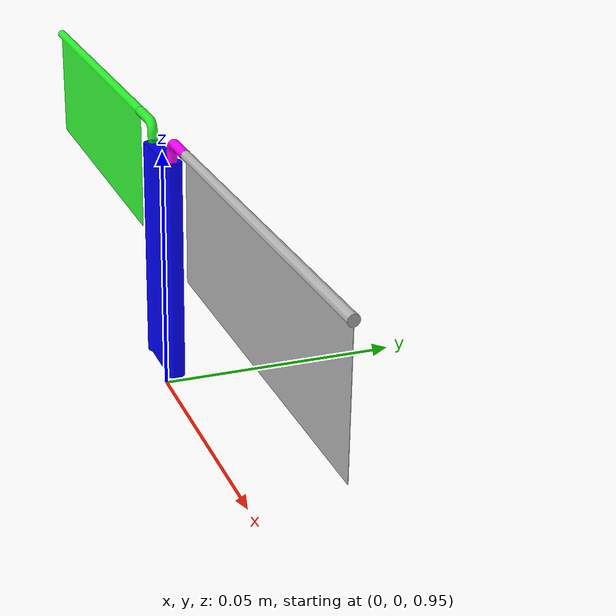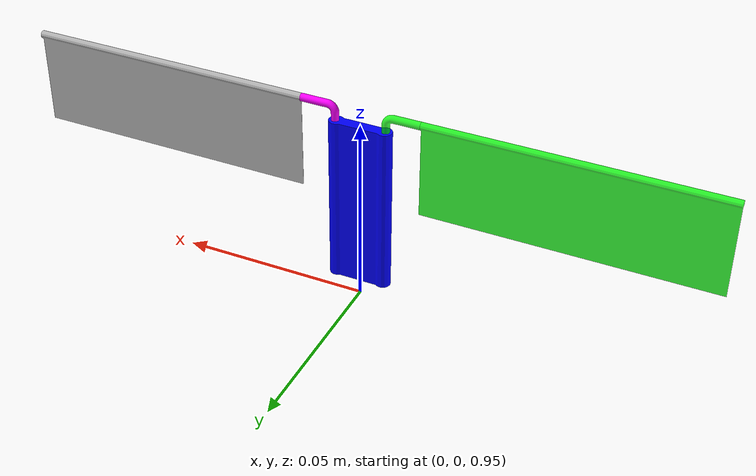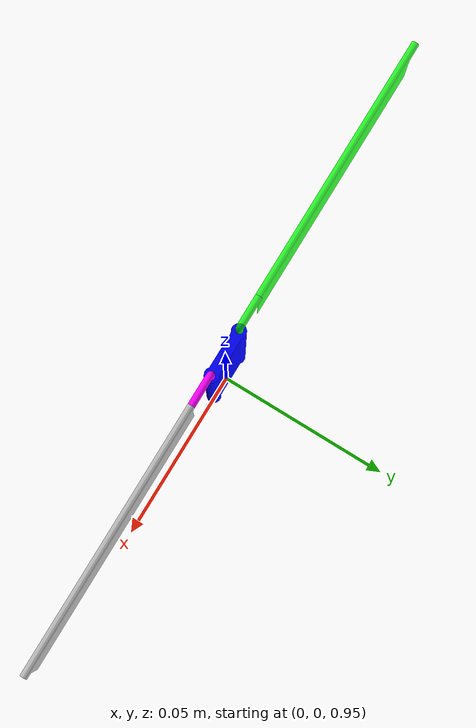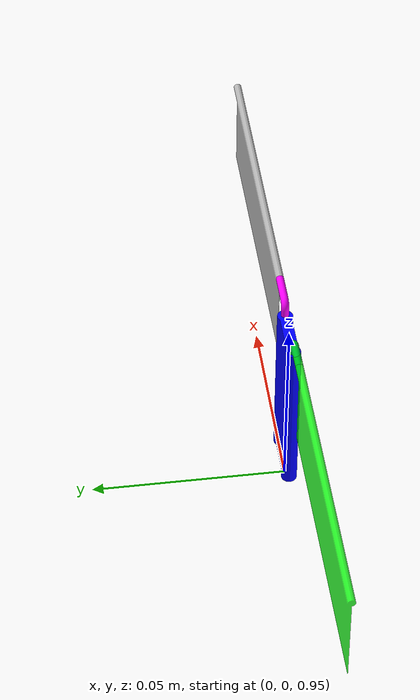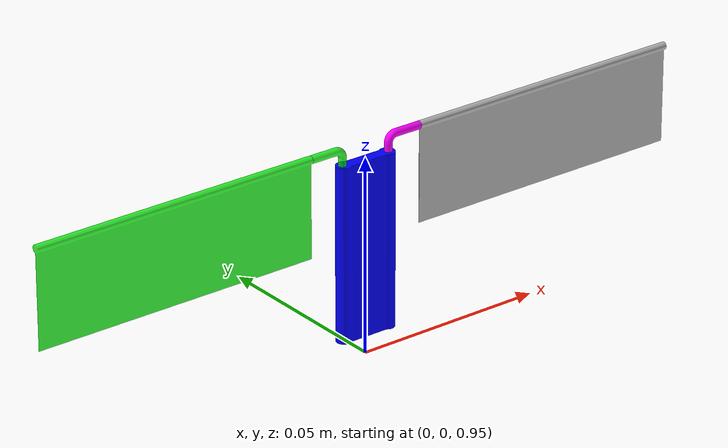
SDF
<?xml version="1.0" ?>
<sdf version="1.8">
   <world name="world2">
      <physics name="1ms" type="ignored">
         <max_step_size>0.0001</max_step_size>
         <real_time_factor>1.0</real_time_factor>
      </physics>
      <plugin filename="libignition-gazebo-physics-system.so" name="ignition::gazebo::systems::Physics">
        </plugin>
      <plugin filename="libignition-gazebo-user-commands-system.so" name="ignition::gazebo::systems::UserCommands">
        </plugin>
      <plugin filename="libignition-gazebo-scene-broadcaster-system.so" name="ignition::gazebo::systems::SceneBroadcaster">
        </plugin>
      <light type="directional" name="sun">
         <cast_shadows>true</cast_shadows>
         <pose>0 0 10 0 0 0</pose>
         <diffuse>0.8 0.8 0.8 1</diffuse>
         <specular>0.2 0.2 0.2 1</specular>
         <attenuation>
            <range>1000</range>
            <constant>0.9</constant>
            <linear>0.01</linear>
            <quadratic>0.001</quadratic>
         </attenuation>
         <direction>-0.5 0.1 -0.9</direction>
      </light>
      <model name="ground_plane">
         <pose relative_to="world">0 0 0 0 0 0</pose>
         <static>true</static>
         <link name="link">
            <collision name="link">
               <geometry>
                  <plane>
                     <normal>0 0 1</normal>
                  </plane>
               </geometry>
            </collision>
            <visual name="link">
               <geometry>
                  <plane>
                     <normal>0 0 1</normal>
                     <size>3 3</size>
                  </plane>
               </geometry>
               <material>
                  <ambient>0.8 0.8 0.8 1</ambient>
                  <diffuse>0.8 0.8 0.8 1</diffuse>
                  <specular>0.8 0.8 0.8 1</specular>
               </material>
            </visual>
         </link>
      </model>
      <model name="URDF_Tiny">
         <pose relative_to="world">0 0 1 1.5708 0 0</pose>
         <link name="base_link">
            <pose>0 0 0 0 0 0</pose>
            <inertial>
               <pose>2.90929190927912E-18 -0.0225 1.75308850064785E-18 0 0 0</pose>
               <mass>0.00635649989496079</mass>
               <inertia>
                  <ixx>1.07828542773576E-06</ixx>
                  <ixy>6.91754242672403E-24</ixy>
                  <ixz>-2.8657332950023E-25</ixz>
                  <iyy>1.53486567387336E-07</iyy>
                  <iyz>6.48370505339519E-23</iyz>
                  <izz>1.22051985420084E-06</izz>
               </inertia>
            </inertial>
            <visual name="base_link">
               <pose>0 0 0 0 0 0</pose>
               <geometry>
                  <mesh>
                     <uri>model://URDF_Tiny/meshes/base_link.STL</uri>
                  </mesh>
               </geometry>
               <material>
                  <ambient>0.0 0.0 1.0 1</ambient>
                  <diffuse>0.0 0.0 1.0 1</diffuse>
                  <specular>0.0 0.0 1.0 1</specular>
               </material>
            </visual>
            <collision name="base_link">
               <pose>0 0 0 0 0 0</pose>
               <geometry>
                  <mesh>
                     <uri>model://URDF_Tiny/meshes/base_link.STL</uri>
                  </mesh>
               </geometry>
            </collision>
         </link>
         <link name="RW_Flap">
            <pose relative_to="joint_RW_J_Flap">0 0 0 0 0 0</pose>
            <inertial>
               <pose>0.00333837466497408 0.00333837466497408 2.6213145100327E-20 0 0 0</pose>
               <mass>3.89068170490654E-05</mass>
               <inertia>
                  <ixx>6.78208726623603E-11</ixx>
                  <ixy>-8.49217730939301E-11</ixy>
                  <ixz>-1.64845713489435E-27</ixz>
                  <iyy>3.57554255139679E-10</iyy>
                  <iyz>1.22977512422724E-27</iyz>
                  <izz>4.05921719277506E-10</izz>
               </inertia>
            </inertial>
            <visual name="RW_Flap">
               <pose relative_to="joint_RW_J_Flap">0 0 0 0 0 0</pose>
               <geometry>
                  <mesh>
                     <uri>model://URDF_Tiny/meshes/RW_Flap.STL</uri>
                  </mesh>
               </geometry>
               <material>
                  <ambient>1.0 0.0 1.0 .9</ambient>
                  <diffuse>1.0 0.0 1.0 .9</diffuse>
                  <specular>1.0 0.0 1.0 .9</specular>
               </material>
            </visual>
            <collision name="RW_Flap">
               <pose relative_to="joint_RW_J_Flap">0 0 0 0 0 0</pose>
               <geometry>
                  <mesh>
                     <uri>model://URDF_Tiny/meshes/RW_Flap.STL</uri>
                  </mesh>
               </geometry>
            </collision>
         </link>
         <link name="RW_Pitch">
            <pose relative_to="joint_RW_J_Pitch">0 0 0 0 0 0</pose>
            <inertial>
               <pose>0.0375 -0.00563011555355997 3.10971969344189E-20 0 0 0</pose>
               <mass>0.000423935026696007</mass>
               <inertia>
                  <ixx>2.65235443608576E-08</ixx>
                  <ixy>-2.93064684625566E-23</ixy>
                  <ixz>-1.65258864845697E-24</ixz>
                  <iyy>1.98779779728036E-07</iyy>
                  <iyz>-3.47087198051225E-26</iyz>
                  <izz>2.25182852160328E-07</izz>
               </inertia>
            </inertial>
            <visual name="RW_Pitch">
               <pose relative_to="joint_RW_J_Pitch">0 0 0 0 0 0</pose>
               <geometry>
                  <mesh>
                     <uri>model://URDF_Tiny/meshes/RW_Pitch.STL</uri>
                  </mesh>
               </geometry>
            </visual>
            <collision name="RW_Pitch">
               <pose relative_to="joint_RW_J_Pitch">0 0 0 0 0 0</pose>
               <geometry>
                  <mesh>
                     <uri>model://URDF_Tiny/meshes/RW_Pitch.STL</uri>
                  </mesh>
               </geometry>
               <material>
                  <ambient>0.0 1.0 0.0 .8</ambient>
                  <diffuse>0.0 1.0 0.0 .8</diffuse>
                  <specular>0.0 1.0 0.0 .75</specular>
               </material>
            </collision>
         </link>
         <link name="LW_Flap">
            <pose relative_to="joint_LW_J_Flap">0 0 0 0 0 0</pose>
            <inertial>
               <pose>-0.00333837466497408 0.00333837466497408 -2.6213145100327E-20 0 0 0</pose>
               <mass>3.89068170490654E-05</mass>
               <inertia>
                  <ixx>6.78208726623603E-11</ixx>
                  <ixy>8.49217730939301E-11</ixy>
                  <ixz>-1.64845713489435E-27</ixz>
                  <iyy>3.57554255139679E-10</iyy>
                  <iyz>-1.22977512422724E-27</iyz>
                  <izz>4.05921719277506E-10</izz>
               </inertia>
            </inertial>
            <visual name="LW_Flap">
               <pose relative_to="joint_LW_J_Flap">0 0 0 0 0 0</pose>
               <geometry>
                  <mesh>
                     <uri>model://URDF_Tiny/meshes/LW_Flap.STL</uri>
                  </mesh>
               </geometry>
               <material>
                  <ambient>0.0 1.0 0.0 .8</ambient>
                  <diffuse>0.0 1.0 0.0 .8</diffuse>
                  <specular>0.0 1.0 0.0 .75</specular>
               </material>
            </visual>
            <collision name="LW_Flap">
               <pose relative_to="joint_LW_J_Flap">0 0 0 0 0 0</pose>
               <geometry>
                  <mesh>
                     <uri>model://URDF_Tiny/meshes/LW_Flap.STL</uri>
                  </mesh>
               </geometry>
            </collision>
         </link>
         <link name="LW_Pitch">
            <pose relative_to="joint_LW_J_Pitch">0 0 0 0 0 0</pose>
            <inertial>
               <pose>-0.0375 -0.00563011555355997 6.26802875709381E-20 0 0 0</pose>
               <mass>0.000423935026696007</mass>
               <inertia>
                  <ixx>2.65235443608576E-08</ixx>
                  <ixy>-1.09267072911845E-23</ixy>
                  <ixz>-1.65258864845697E-24</ixz>
                  <iyy>1.98779779728037E-07</iyy>
                  <iyz>4.05208227165849E-26</iyz>
                  <izz>2.25182852160328E-07</izz>
               </inertia>
            </inertial>
            <visual name="LW_Pitch">
               <pose relative_to="joint_LW_J_Pitch">0 0 0 0 0 0</pose>
               <geometry>
                  <mesh>
                     <uri>model://URDF_Tiny/meshes/LW_Pitch.STL</uri>
                  </mesh>
               </geometry>
               <material>
                  <ambient>0.0 1.0 0.0 .8</ambient>
                  <diffuse>0.0 1.0 0.0 .8</diffuse>
                  <specular>0.0 1.0 0.0 .75</specular>
               </material>
            </visual>
            <collision name="LW_Pitch">
               <pose relative_to="joint_LW_J_Pitch">0 0 0 0 0 0</pose>
               <geometry>
                  <mesh>
                     <uri>model://URDF_Tiny/meshes/LW_Pitch.STL</uri>
                  </mesh>
               </geometry>
               <material>
                  <ambient>0.0 1.0 0.0 .8</ambient>
                  <diffuse>0.0 1.0 0.0 .8</diffuse>
                  <specular>0.0 1.0 0.0 .75</specular>
               </material>
            </collision>
         </link>

         <joint name="joint_RW_J_Pitch" type="revolute">
            <pose relative_to="RW_Flap">0.00899999999999999 0.004 0 0 0 0</pose>
            <parent>RW_Flap</parent>
            <child>RW_Pitch</child>
            <axis>
               <xyz>-1 0 0</xyz>
               <dynamics>
                                    <spring_stiffness>.5</spring_stiffness>

               </dynamics>
               <limit>
                  <lower>-1.79769e+308</lower>
                  <upper>1.79769e+308</upper>
               </limit>
            </axis>
         </joint>

         <joint name="joint_LW_J_Pitch" type="revolute">
            <pose relative_to="LW_Flap">-0.00899999999999999 0.004 0 0 0 0</pose>
            <parent>LW_Flap</parent>
            <child>LW_Pitch</child>
            <axis>
               <xyz>1 0 0</xyz>
               <dynamics>
                  <spring_stiffness>.5</spring_stiffness>

               </dynamics>
               <limit>
                  <lower>-1.79769e+308</lower>
                  <upper>1.79769e+308</upper>
               </limit>
            </axis>
         </joint>

         <joint name="joint_RW_J_Flap" type="revolute">
            <pose relative_to="base_link">0.00666143782776616 0 0 0 0 0</pose>
            <parent>base_link</parent>
            <child>RW_Flap</child>
            <axis>
               <xyz>0 -1 0</xyz>
               <dynamics>
                  <damping>.15</damping>
                  <spring_stiffness>2</spring_stiffness>
               </dynamics>
               <limit>
                  <lower>-1.79769e+308</lower>
                  <upper>1.79769e+308</upper>
               </limit>
            </axis>
         </joint>

         <joint name="joint_LW_J_Flap" type="revolute">
            <pose relative_to="base_link">-0.00666143782776616 0 0 0 0 0</pose>
            <parent>base_link</parent>
            <child>LW_Flap</child>
            <axis>
               <xyz>0 -1 0</xyz>
               <dynamics>
                  <damping>.15</damping>
                  <spring_stiffness>2</spring_stiffness>
               </dynamics>
               <limit>
                  <lower>-1.79769e+308</lower>
                  <upper>1.79769e+308</upper>
               </limit>
            </axis>
         </joint>

         <!-- hold model in air -->
         <joint name="anchor" type="revolute">
            <pose relative_to="base_link">0 0 0 0 0 0</pose>
            <parent>world</parent>
            <child>base_link</child>
            <axis>
               <xyz>0 0 1</xyz>
               <limit>
                  <lower>0</lower>
                  <upper>0</upper>

               </limit>
            </axis>
         </joint>

         <plugin filename="aero_state_plugins" name="aerodynamics">
            <data_file_path>/home/grasshopper/Github/ros2-gazebo-drake-sims/flapping_proj/data/aero.csv</data_file_path>
            <only_data>false</only_data>
            <link>
                <link_name>RW_Pitch</link_name>
                <link_type>wing</link_type>
                <stall_angle>15</stall_angle>
                <fluid_density>1.293</fluid_density>
                <drag_coefficient>1.28</drag_coefficient>
                <lift_coefficient>1</lift_coefficient>
                <control_joint>joint_RW_J_Flap</control_joint>
                <wing_pitch_joint>joint_RW_J_Pitch</wing_pitch_joint>
                <blades>15</blades>
                <center_pressure_list>-.0370,-0.007,0, -.0320,-0.007,0, -.0270,-0.007,0, -.0220,-0.007,0, -.0170,-0.007,0, -.0120,-0.007,0, -.0070,-0.007,0, -.002,-0.007,0, .0030,-0.007,0, .008,-0.007,0, .0130,-0.007,0, .0180,-0.007,0, .0230,-0.007,0, .0280,-0.007,0, .0330,-0.007,0 </center_pressure_list>
                <upward_vector_list>0,0,1, 0,0,1, 0,0,1, 0,0,1, 0,0,1, 0,0,1, 0,0,1, 0,0,1, 0,0,1, 0,0,1, 0,0,1, 0,0,1, 0,0,1, 0,0,1, 0,0,1 </upward_vector_list>
                <blade_area_list>0.00018, 0.00018, 0.00018, 0.00018, 0.00018, 0.00018, 0.00018, 0.00018, 0.00018, 0.00018, 0.00018, 0.00018, 0.00018, 0.00018, 0.00018 </blade_area_list>
            </link>
            <link>
                <link_name>LW_Pitch</link_name>
                <link_type>wing</link_type>
                <stall_angle>15</stall_angle>
                <fluid_density>1.293</fluid_density>
                <drag_coefficient>1</drag_coefficient>
                <lift_coefficient>1</lift_coefficient>
                <control_joint>joint_LW_J_Flap</control_joint>
                <wing_pitch_joint>joint_LW_J_Pitch</wing_pitch_joint>
                <blades>15</blades>
               <center_pressure_list>-.0370,-0.007,0, -.0320,-0.007,0, -.0270,-0.007,0, -.0220,-0.007,0, -.0170,-0.007,0, -.0120,-0.007,0, -.0070,-0.007,0, -.002,-0.007,0, .0030,-0.007,0, .008,-0.007,0, .0130,-0.007,0, .0180,-0.007,0, .0230,-0.007,0, .0280,-0.007,0, .0330,-0.007,0 </center_pressure_list>
               <upward_vector_list>0,0,1, 0,0,1, 0,0,1, 0,0,1, 0,0,1, 0,0,1, 0,0,1, 0,0,1, 0,0,1, 0,0,1, 0,0,1, 0,0,1, 0,0,1, 0,0,1, 0,0,1 </upward_vector_list>
               <!-- area increased by  50% -->
               <blade_area_list>0.00018, 0.00018, 0.00018, 0.00018, 0.00018, 0.00018, 0.00018, 0.00018, 0.00018, 0.00018, 0.00018, 0.00018, 0.00018, 0.00018, 0.00018 </blade_area_list>
            </link>
         </plugin>

         <!-- controller/odom plugin-->
         <plugin
            filename="aero_state_plugins"
            name="odometry_state">
            <world_name>world2</world_name>
            <odometry_topic>/odom</odometry_topic>
            <odom_publish_frequency>1000.0</odom_publish_frequency>
            <joint>joint_LW_J_Flap</joint>
            <joint>joint_LW_J_Pitch</joint>
            <joint>joint_RW_J_Pitch</joint>
            <joint>joint_RW_J_Flap</joint>
         </plugin>

         <!-- subscribes to model_name/joint/jointname/cmd_force , takes doubles -->
         <!-- joints-->

         <!--wing links-->
         <plugin
            filename="libignition-gazebo-apply-joint-force-system.so"
            name = "ignition::gazebo::systems::ApplyJointForce">
            <joint_name>joint_LW_J_Flap</joint_name>
         </plugin>
         <plugin
            filename="libignition-gazebo-apply-joint-force-system.so"
            name = "ignition::gazebo::systems::ApplyJointForce">
         <joint_name>joint_RW_J_Flap</joint_name>
         </plugin>

      </model>
   </world>
</sdf>
